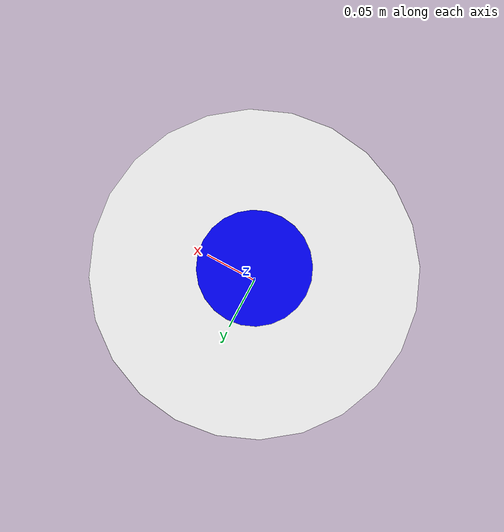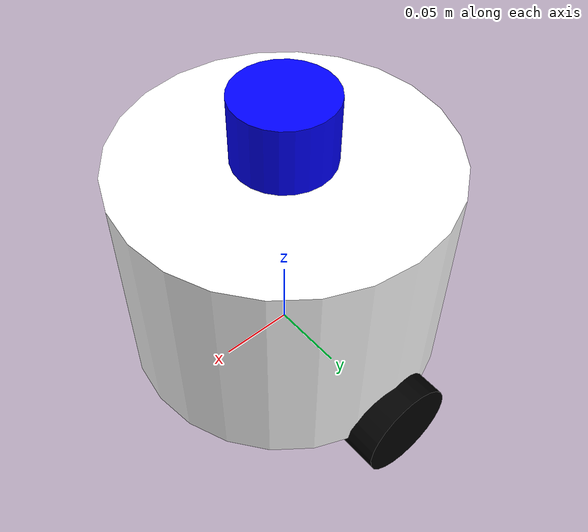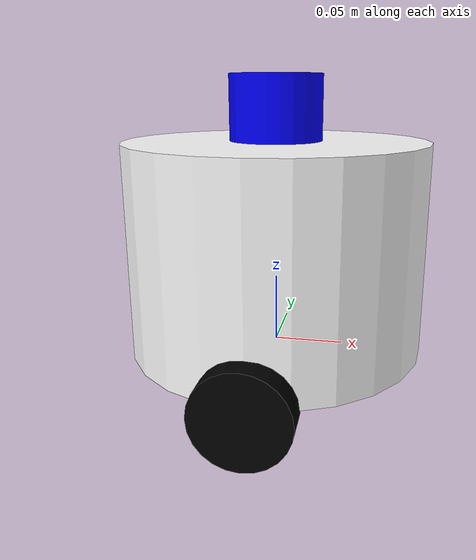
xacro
<?xml version="1.0"?>
<robot xmlns:xacro="http://www.ros.org/wiki/xacro"  name="swarm_bot">

    <xacro:include filename="inertial_macros.xacro" />
    <xacro:include filename="gazebo_control.xacro" />
    <xacro:include filename="lidar.xacro" />

    <!-- LINKS -->

    <!-- Origin -->
    <link name="origin_link">
    </link>

    <!-- Base -->
    <link name="base_link">
        <visual>
            <!-- change the position of the visualization only, not the axis -->
            <origin xyz="0 0 0.1075" rpy="0 0 0"/>
            <geometry>
                <!-- unit/ meter -->
                <cylinder radius="0.107" length="0.15"/>
            </geometry>
            <material name="white">
                <color rgba="1 1 1 1"/>
            </material>
        </visual>
        <collision>
            <origin xyz="0 0 0.1075" rpy="0 0 0"/>
            <geometry>
                <cylinder radius="0.107" length="0.15"/>
            </geometry>
        </collision>
        <xacro:inertial_cylinder mass="0.5" length="0.15" radius="0.107">
            <origin xyz="0 0 0.1075" rpy="0 0 0"/>
        </xacro:inertial_cylinder>
    </link>

    <gazebo reference="base_link">
        <material>Gazebo/White</material>
    </gazebo>

    <!-- Left Wheel -->
    <link name="left_wheel">
        <visual>
            <geometry>
                <cylinder radius="0.0325" length="0.03"/>
            </geometry>
            <material name="black">
                <color rgba="0.0 0.0 0.0 1.0"/>
            </material>
        </visual>
        <collision>
            <geometry>
                <cylinder radius="0.0325" length="0.03"/>
            </geometry>
        </collision>
        <xacro:inertial_cylinder mass="0.2" length="0.03" radius="0.0325">
            <origin xyz="0 0 0" rpy="0 0 0"/>
        </xacro:inertial_cylinder>
    </link>

    <gazebo reference="left_wheel">
        <material>Gazebo/Black</material>
    </gazebo>

    <!-- Right Wheel -->
    <link name="right_wheel">
        <visual>
            <geometry>
                <cylinder radius="0.0325" length="0.03"/>
            </geometry>
            <material name="black">
                <color rgba="0.0 0.0 0.0 1.0"/>
            </material>
        </visual>
        <collision>
            <geometry>
                <cylinder radius="0.0325" length="0.03"/>
            </geometry>
        </collision>
        <xacro:inertial_cylinder mass="0.2" length="0.03" radius="0.0325">
            <origin xyz="0 0 0" rpy="0 0 0"/>
        </xacro:inertial_cylinder>
    </link>

    <gazebo reference="right_wheel">
        <material>Gazebo/Black</material>
    </gazebo>

    <!-- Front Passive Wheel -->
    <link name="front_passive_wheel">
        <visual>
            <geometry>
                <sphere radius="0.024"/>
            </geometry>
            <material name="black">
                <color rgba="0.0 0.0 0.0 1.0"/>
            </material>
        </visual>
        <collision>
            <geometry>
                <sphere radius="0.024"/>
            </geometry>
        </collision>
        <xacro:inertial_sphere mass="0.1" radius="0.05">
            <origin xyz="0 0 0" rpy="0 0 0"/>
        </xacro:inertial_sphere>
    </link>

    <gazebo reference="front_passive_wheel">
        <material>Gazebo/Black</material>
        <!-- reduce friction to make the wheels able to roll -->
        <mu1 value="0.001"/>
        <mu2 value="0.001"/>
    </gazebo>

    <!-- Back Passive Wheel -->
    <link name="back_passive_wheel">
        <visual>
            <geometry>
                <sphere radius="0.024"/>
            </geometry>
            <material name="black">
                <color rgba="0.0 0.0 0.0 1.0"/>
            </material>
        </visual>
        <collision>
            <geometry>
                <sphere radius="0.024"/>
            </geometry>
        </collision>
        <xacro:inertial_sphere mass="0.1" radius="0.024">
            <origin xyz="0 0 0" rpy="0 0 0"/>
        </xacro:inertial_sphere>
    </link>

    <gazebo reference="back_passive_wheel">
        <material>Gazebo/Black</material>
        <mu1 value="0.001"/>
        <mu2 value="0.001"/>
    </gazebo>

    <!-- JOINTS-->

    <!-- Base -->
    <joint name="origin_joint" type="fixed">
        <parent link="origin_link"/>
        <child link="base_link"/>
        <origin xyz="0 0 -0.0325"/>
    </joint>

    <!-- Left Wheel -->
    <joint name="left_wheel_joint" type="continuous">
        <parent link="origin_link"/>
        <child link="left_wheel"/>
        <!-- rotate wheel 90 deg around x-axis -->
        <origin xyz="0 -0.107 0" rpy="-${pi/2} 0 0"/>
        <axis xyz="0 0 1"/>
    </joint>

    <!-- Right Wheel -->
    <joint name="right_wheel_joint" type="continuous">
        <parent link="origin_link"/>
        <child link="right_wheel"/>
        <origin xyz="0 0.107 0" rpy="${pi/2} 0 0"/>
        <axis xyz="0 0 -1"/>
    </joint>

    <!-- Front Passive Wheel -->
    <joint name="front_passive_wheel_joint" type="continuous">
        <parent link="origin_link"/>
        <child link="front_passive_wheel"/>
        <origin xyz="0.067 0 -0.0085" rpy="0 0 0"/>
    </joint>

    <!-- Back Passive Wheel -->
    <joint name="back_passive_wheel_joint" type="continuous">
        <parent link="origin_link"/>
        <child link="back_passive_wheel"/>
        <origin xyz="-0.067 0 -0.0083" rpy="0 0 0"/>
    </joint>

</robot>

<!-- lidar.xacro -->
<robot xmlns:xacro="http://www.ros.org/wiki/xacro" >

    <link name="lidar">
        <visual>
            <geometry>
                <cylinder radius="0.0325" length="0.045"/>
            </geometry>
            <material name="blue">
                <color rgba="0.0 0.0 1.0 1.0"/>
            </material>
        </visual>
        <collision>
            <geometry>
                <cylinder radius="0.0325" length="0.045"/>
            </geometry>
        </collision>
        <xacro:inertial_cylinder mass="0.1" length="0.045" radius="0.0325">
            <origin xyz="0 0 0" rpy="0 0 0"/>
        </xacro:inertial_cylinder>
    </link>

    <gazebo reference="lidar">
        <material>Gazebo/Blue</material>
    </gazebo>

    <joint name="lidar_joint" type="fixed">
        <parent link="origin_link"/>
        <child link="lidar"/>
        <origin xyz="0 0 0.1725" rpy="0 0 0"/>
    </joint>

    <gazebo reference="lidar">
        <material>Gazebo/Orange</material>

        <sensor name="laser" type="ray">
            <pose> 0 0 0 0 0 0 </pose>
            <always_on>true</always_on>
            <visualize>true</visualize>
            <update_rate>10</update_rate>
            <ray>
                <scan>
                    <horizontal>
                        <samples>360</samples>
                        <min_angle>-3.14</min_angle>
                        <max_angle>3.14</max_angle>
                    </horizontal>
                </scan>
                <range>
                    <min>0.3</min>
                    <max>12</max>
                </range>
            </ray>
            <plugin name="laser_controller" filename="libgazebo_ros_ray_sensor.so">
                <ros>
                    <argument>~/out:=scan</argument>
                </ros>
                <output_type>sensor_msgs/LaserScan</output_type>
                <frame_name>laser_frame</frame_name>
            </plugin>
        </sensor>
    </gazebo>

</robot>
